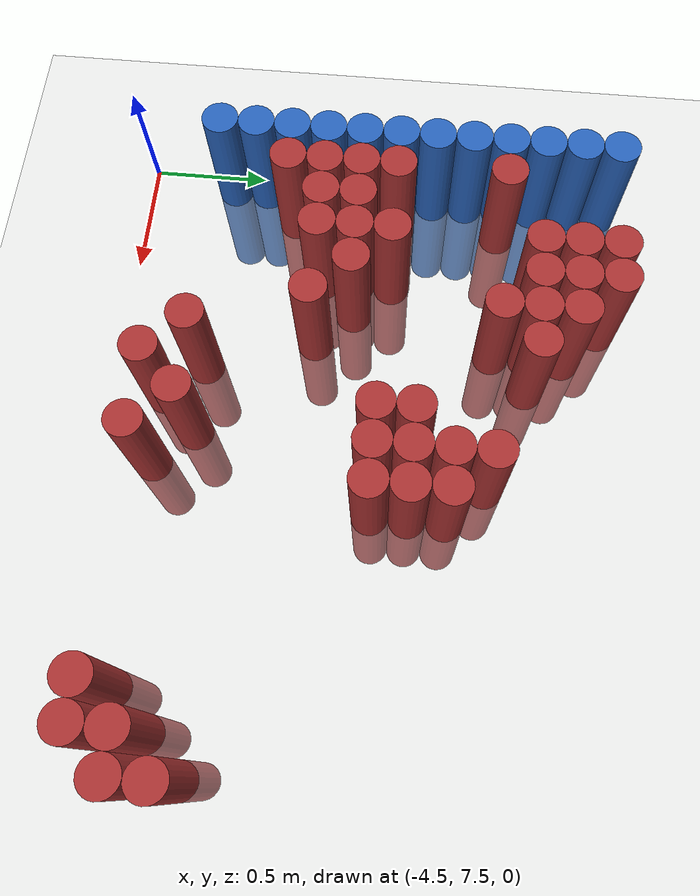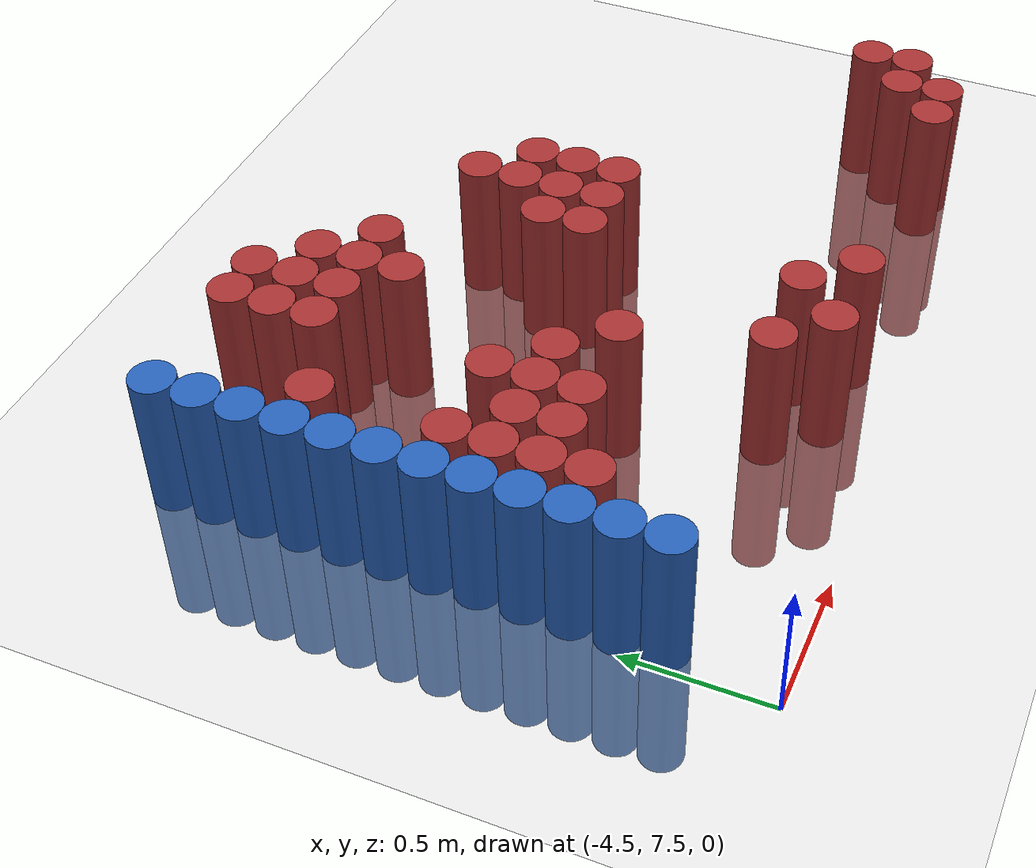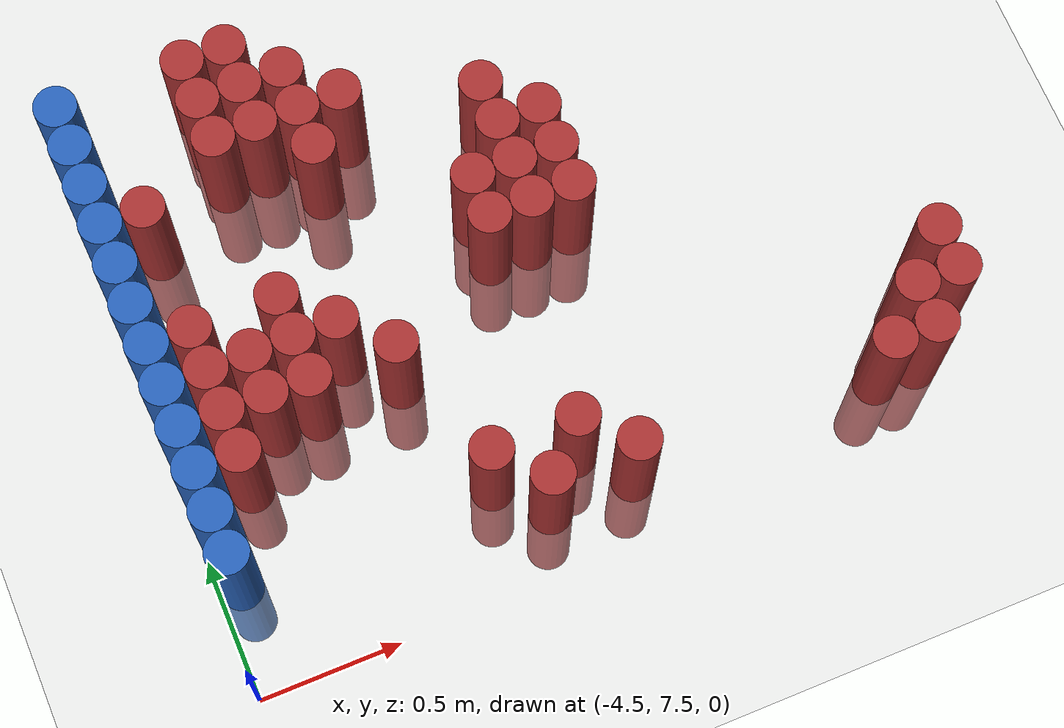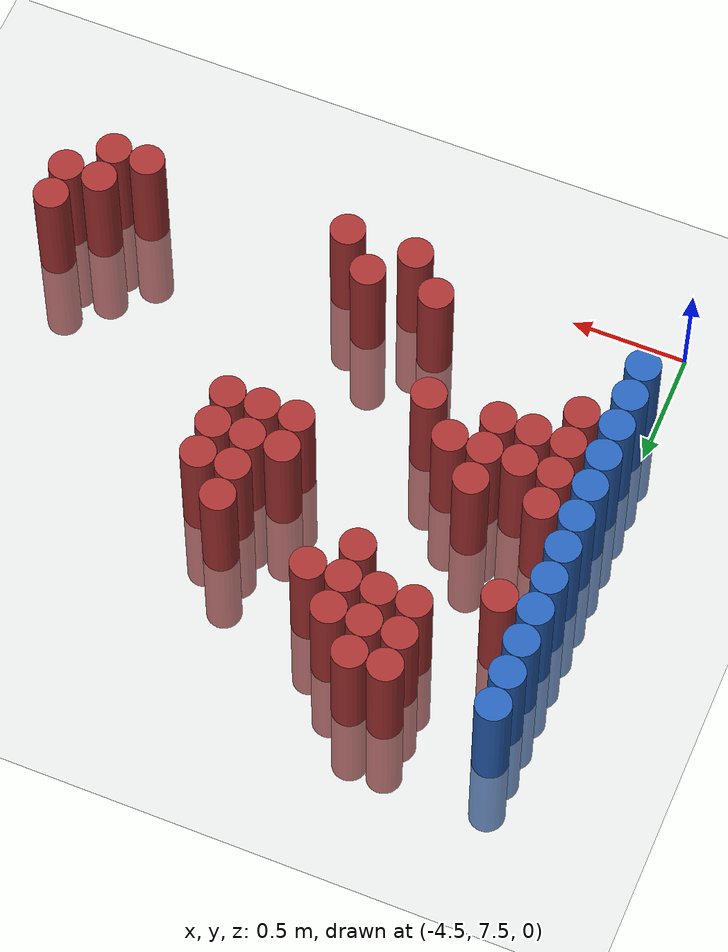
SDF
<sdf version="1.6">
 <world name="default">
  <model name="ground_plane">
   <static>1</static>
   <link name="link">
    <collision name="collision">
     <geometry><plane><normal>0 0 1</normal><size>100 100</size></plane></geometry>
     <surface><friction><ode><mu>100</mu><mu2>50</mu2></ode></friction></surface>
    </collision>
    <visual name="visual">
     <cast_shadows>0</cast_shadows>
     <geometry><plane><normal>0 0 1</normal><size>100 100</size></plane></geometry>
     <material>
      <script><uri>file://media/materials/scripts/gazebo.material</uri><name>Gazebo/Grey</name></script>
     </material>
    </visual>
   </link>
  </model>
  <model name="unit_cylinder_114">
   <static>1</static>
   <pose>-4.425000 7.875000 0.000000 0.000000 0.000000 0.000000</pose>
   <link name="link">
    <inertial>
     <mass>1</mass>
     <inertia><ixx>0.145833</ixx><ixy>0</ixy><ixz>0</ixz><iyy>0.145833</iyy><iyz>0</iyz><izz>0.125</izz></inertia>
    </inertial>
    <collision name="collision">
     <geometry><cylinder><radius>0.075000</radius><length>1</length></cylinder></geometry>
    </collision>
    <visual name="visual">
     <geometry><cylinder><radius>0.075000</radius><length>1</length></cylinder></geometry>
     <material>
      <ambient>0.152000 0.379000 0.720000 1</ambient>
      <diffuse>0.152000 0.379000 0.720000 1</diffuse>
     </material>
     <material>
      <script><name>Gazebo/Grey</name><uri>file://media/materials/scripts/gazebo.material</uri></script>
     </material>
    </visual>
   </link>
  </model>
  <model name="unit_cylinder_115">
   <static>1</static>
   <pose>-4.425000 8.025000 0.000000 0.000000 0.000000 0.000000</pose>
   <link name="link">
    <inertial>
     <mass>1</mass>
     <inertia><ixx>0.145833</ixx><ixy>0</ixy><ixz>0</ixz><iyy>0.145833</iyy><iyz>0</iyz><izz>0.125</izz></inertia>
    </inertial>
    <collision name="collision">
     <geometry><cylinder><radius>0.075000</radius><length>1</length></cylinder></geometry>
    </collision>
    <visual name="visual">
     <geometry><cylinder><radius>0.075000</radius><length>1</length></cylinder></geometry>
     <material>
      <ambient>0.152000 0.379000 0.720000 1</ambient>
      <diffuse>0.152000 0.379000 0.720000 1</diffuse>
     </material>
     <material>
      <script><name>Gazebo/Grey</name><uri>file://media/materials/scripts/gazebo.material</uri></script>
     </material>
    </visual>
   </link>
  </model>
  <model name="unit_cylinder_116">
   <static>1</static>
   <pose>-4.425000 8.175000 0.000000 0.000000 0.000000 0.000000</pose>
   <link name="link">
    <inertial>
     <mass>1</mass>
     <inertia><ixx>0.145833</ixx><ixy>0</ixy><ixz>0</ixz><iyy>0.145833</iyy><iyz>0</iyz><izz>0.125</izz></inertia>
    </inertial>
    <collision name="collision">
     <geometry><cylinder><radius>0.075000</radius><length>1</length></cylinder></geometry>
    </collision>
    <visual name="visual">
     <geometry><cylinder><radius>0.075000</radius><length>1</length></cylinder></geometry>
     <material>
      <ambient>0.152000 0.379000 0.720000 1</ambient>
      <diffuse>0.152000 0.379000 0.720000 1</diffuse>
     </material>
     <material>
      <script><name>Gazebo/Grey</name><uri>file://media/materials/scripts/gazebo.material</uri></script>
     </material>
    </visual>
   </link>
  </model>
  <model name="unit_cylinder_117">
   <static>1</static>
   <pose>-4.425000 8.325000 0.000000 0.000000 0.000000 0.000000</pose>
   <link name="link">
    <inertial>
     <mass>1</mass>
     <inertia><ixx>0.145833</ixx><ixy>0</ixy><ixz>0</ixz><iyy>0.145833</iyy><iyz>0</iyz><izz>0.125</izz></inertia>
    </inertial>
    <collision name="collision">
     <geometry><cylinder><radius>0.075000</radius><length>1</length></cylinder></geometry>
    </collision>
    <visual name="visual">
     <geometry><cylinder><radius>0.075000</radius><length>1</length></cylinder></geometry>
     <material>
      <ambient>0.152000 0.379000 0.720000 1</ambient>
      <diffuse>0.152000 0.379000 0.720000 1</diffuse>
     </material>
     <material>
      <script><name>Gazebo/Grey</name><uri>file://media/materials/scripts/gazebo.material</uri></script>
     </material>
    </visual>
   </link>
  </model>
  <model name="unit_cylinder_118">
   <static>1</static>
   <pose>-4.425000 8.475000 0.000000 0.000000 0.000000 0.000000</pose>
   <link name="link">
    <inertial>
     <mass>1</mass>
     <inertia><ixx>0.145833</ixx><ixy>0</ixy><ixz>0</ixz><iyy>0.145833</iyy><iyz>0</iyz><izz>0.125</izz></inertia>
    </inertial>
    <collision name="collision">
     <geometry><cylinder><radius>0.075000</radius><length>1</length></cylinder></geometry>
    </collision>
    <visual name="visual">
     <geometry><cylinder><radius>0.075000</radius><length>1</length></cylinder></geometry>
     <material>
      <ambient>0.152000 0.379000 0.720000 1</ambient>
      <diffuse>0.152000 0.379000 0.720000 1</diffuse>
     </material>
     <material>
      <script><name>Gazebo/Grey</name><uri>file://media/materials/scripts/gazebo.material</uri></script>
     </material>
    </visual>
   </link>
  </model>
  <model name="unit_cylinder_119">
   <static>1</static>
   <pose>-4.425000 8.625000 0.000000 0.000000 0.000000 0.000000</pose>
   <link name="link">
    <inertial>
     <mass>1</mass>
     <inertia><ixx>0.145833</ixx><ixy>0</ixy><ixz>0</ixz><iyy>0.145833</iyy><iyz>0</iyz><izz>0.125</izz></inertia>
    </inertial>
    <collision name="collision">
     <geometry><cylinder><radius>0.075000</radius><length>1</length></cylinder></geometry>
    </collision>
    <visual name="visual">
     <geometry><cylinder><radius>0.075000</radius><length>1</length></cylinder></geometry>
     <material>
      <ambient>0.152000 0.379000 0.720000 1</ambient>
      <diffuse>0.152000 0.379000 0.720000 1</diffuse>
     </material>
     <material>
      <script><name>Gazebo/Grey</name><uri>file://media/materials/scripts/gazebo.material</uri></script>
     </material>
    </visual>
   </link>
  </model>
  <model name="unit_cylinder_120">
   <static>1</static>
   <pose>-4.425000 8.775000 0.000000 0.000000 0.000000 0.000000</pose>
   <link name="link">
    <inertial>
     <mass>1</mass>
     <inertia><ixx>0.145833</ixx><ixy>0</ixy><ixz>0</ixz><iyy>0.145833</iyy><iyz>0</iyz><izz>0.125</izz></inertia>
    </inertial>
    <collision name="collision">
     <geometry><cylinder><radius>0.075000</radius><length>1</length></cylinder></geometry>
    </collision>
    <visual name="visual">
     <geometry><cylinder><radius>0.075000</radius><length>1</length></cylinder></geometry>
     <material>
      <ambient>0.152000 0.379000 0.720000 1</ambient>
      <diffuse>0.152000 0.379000 0.720000 1</diffuse>
     </material>
     <material>
      <script><name>Gazebo/Grey</name><uri>file://media/materials/scripts/gazebo.material</uri></script>
     </material>
    </visual>
   </link>
  </model>
  <model name="unit_cylinder_121">
   <static>1</static>
   <pose>-4.425000 8.925000 0.000000 0.000000 0.000000 0.000000</pose>
   <link name="link">
    <inertial>
     <mass>1</mass>
     <inertia><ixx>0.145833</ixx><ixy>0</ixy><ixz>0</ixz><iyy>0.145833</iyy><iyz>0</iyz><izz>0.125</izz></inertia>
    </inertial>
    <collision name="collision">
     <geometry><cylinder><radius>0.075000</radius><length>1</length></cylinder></geometry>
    </collision>
    <visual name="visual">
     <geometry><cylinder><radius>0.075000</radius><length>1</length></cylinder></geometry>
     <material>
      <ambient>0.152000 0.379000 0.720000 1</ambient>
      <diffuse>0.152000 0.379000 0.720000 1</diffuse>
     </material>
     <material>
      <script><name>Gazebo/Grey</name><uri>file://media/materials/scripts/gazebo.material</uri></script>
     </material>
    </visual>
   </link>
  </model>
  <model name="unit_cylinder_122">
   <static>1</static>
   <pose>-4.425000 9.075000 0.000000 0.000000 0.000000 0.000000</pose>
   <link name="link">
    <inertial>
     <mass>1</mass>
     <inertia><ixx>0.145833</ixx><ixy>0</ixy><ixz>0</ixz><iyy>0.145833</iyy><iyz>0</iyz><izz>0.125</izz></inertia>
    </inertial>
    <collision name="collision">
     <geometry><cylinder><radius>0.075000</radius><length>1</length></cylinder></geometry>
    </collision>
    <visual name="visual">
     <geometry><cylinder><radius>0.075000</radius><length>1</length></cylinder></geometry>
     <material>
      <ambient>0.152000 0.379000 0.720000 1</ambient>
      <diffuse>0.152000 0.379000 0.720000 1</diffuse>
     </material>
     <material>
      <script><name>Gazebo/Grey</name><uri>file://media/materials/scripts/gazebo.material</uri></script>
     </material>
    </visual>
   </link>
  </model>
  <model name="unit_cylinder_123">
   <static>1</static>
   <pose>-4.425000 9.225000 0.000000 0.000000 0.000000 0.000000</pose>
   <link name="link">
    <inertial>
     <mass>1</mass>
     <inertia><ixx>0.145833</ixx><ixy>0</ixy><ixz>0</ixz><iyy>0.145833</iyy><iyz>0</iyz><izz>0.125</izz></inertia>
    </inertial>
    <collision name="collision">
     <geometry><cylinder><radius>0.075000</radius><length>1</length></cylinder></geometry>
    </collision>
    <visual name="visual">
     <geometry><cylinder><radius>0.075000</radius><length>1</length></cylinder></geometry>
     <material>
      <ambient>0.152000 0.379000 0.720000 1</ambient>
      <diffuse>0.152000 0.379000 0.720000 1</diffuse>
     </material>
     <material>
      <script><name>Gazebo/Grey</name><uri>file://media/materials/scripts/gazebo.material</uri></script>
     </material>
    </visual>
   </link>
  </model>
  <model name="unit_cylinder_124">
   <static>1</static>
   <pose>-4.425000 9.375000 0.000000 0.000000 0.000000 0.000000</pose>
   <link name="link">
    <inertial>
     <mass>1</mass>
     <inertia><ixx>0.145833</ixx><ixy>0</ixy><ixz>0</ixz><iyy>0.145833</iyy><iyz>0</iyz><izz>0.125</izz></inertia>
    </inertial>
    <collision name="collision">
     <geometry><cylinder><radius>0.075000</radius><length>1</length></cylinder></geometry>
    </collision>
    <visual name="visual">
     <geometry><cylinder><radius>0.075000</radius><length>1</length></cylinder></geometry>
     <material>
      <ambient>0.152000 0.379000 0.720000 1</ambient>
      <diffuse>0.152000 0.379000 0.720000 1</diffuse>
     </material>
     <material>
      <script><name>Gazebo/Grey</name><uri>file://media/materials/scripts/gazebo.material</uri></script>
     </material>
    </visual>
   </link>
  </model>
  <model name="unit_cylinder_125">
   <static>1</static>
   <pose>-4.425000 9.525000 0.000000 0.000000 0.000000 0.000000</pose>
   <link name="link">
    <inertial>
     <mass>1</mass>
     <inertia><ixx>0.145833</ixx><ixy>0</ixy><ixz>0</ixz><iyy>0.145833</iyy><iyz>0</iyz><izz>0.125</izz></inertia>
    </inertial>
    <collision name="collision">
     <geometry><cylinder><radius>0.075000</radius><length>1</length></cylinder></geometry>
    </collision>
    <visual name="visual">
     <geometry><cylinder><radius>0.075000</radius><length>1</length></cylinder></geometry>
     <material>
      <ambient>0.152000 0.379000 0.720000 1</ambient>
      <diffuse>0.152000 0.379000 0.720000 1</diffuse>
     </material>
     <material>
      <script><name>Gazebo/Grey</name><uri>file://media/materials/scripts/gazebo.material</uri></script>
     </material>
    </visual>
   </link>
  </model>
  <model name="unit_cylinder_139">
   <static>1</static>
   <pose>-4.275000 8.175000 0.000000 0.000000 0.000000 0.000000</pose>
   <link name="link">
    <inertial>
     <mass>1</mass>
     <inertia><ixx>0.145833</ixx><ixy>0</ixy><ixz>0</ixz><iyy>0.145833</iyy><iyz>0</iyz><izz>0.125</izz></inertia>
    </inertial>
    <collision name="collision">
     <geometry><cylinder><radius>0.075000</radius><length>1</length></cylinder></geometry>
    </collision>
    <visual name="visual">
     <geometry><cylinder><radius>0.075000</radius><length>1</length></cylinder></geometry>
     <material>
      <ambient>0.648000 0.192000 0.192000 1</ambient>
      <diffuse>0.648000 0.192000 0.192000 1</diffuse>
     </material>
     <material>
      <script><name>Gazebo/Grey</name><uri>file://media/materials/scripts/gazebo.material</uri></script>
     </material>
    </visual>
   </link>
  </model>
  <model name="unit_cylinder_140">
   <static>1</static>
   <pose>-4.275000 8.325000 0.000000 0.000000 0.000000 0.000000</pose>
   <link name="link">
    <inertial>
     <mass>1</mass>
     <inertia><ixx>0.145833</ixx><ixy>0</ixy><ixz>0</ixz><iyy>0.145833</iyy><iyz>0</iyz><izz>0.125</izz></inertia>
    </inertial>
    <collision name="collision">
     <geometry><cylinder><radius>0.075000</radius><length>1</length></cylinder></geometry>
    </collision>
    <visual name="visual">
     <geometry><cylinder><radius>0.075000</radius><length>1</length></cylinder></geometry>
     <material>
      <ambient>0.648000 0.192000 0.192000 1</ambient>
      <diffuse>0.648000 0.192000 0.192000 1</diffuse>
     </material>
     <material>
      <script><name>Gazebo/Grey</name><uri>file://media/materials/scripts/gazebo.material</uri></script>
     </material>
    </visual>
   </link>
  </model>
  <model name="unit_cylinder_141">
   <static>1</static>
   <pose>-4.275000 8.475000 0.000000 0.000000 0.000000 0.000000</pose>
   <link name="link">
    <inertial>
     <mass>1</mass>
     <inertia><ixx>0.145833</ixx><ixy>0</ixy><ixz>0</ixz><iyy>0.145833</iyy><iyz>0</iyz><izz>0.125</izz></inertia>
    </inertial>
    <collision name="collision">
     <geometry><cylinder><radius>0.075000</radius><length>1</length></cylinder></geometry>
    </collision>
    <visual name="visual">
     <geometry><cylinder><radius>0.075000</radius><length>1</length></cylinder></geometry>
     <material>
      <ambient>0.648000 0.192000 0.192000 1</ambient>
      <diffuse>0.648000 0.192000 0.192000 1</diffuse>
     </material>
     <material>
      <script><name>Gazebo/Grey</name><uri>file://media/materials/scripts/gazebo.material</uri></script>
     </material>
    </visual>
   </link>
  </model>
  <model name="unit_cylinder_142">
   <static>1</static>
   <pose>-4.275000 8.625000 0.000000 0.000000 0.000000 0.000000</pose>
   <link name="link">
    <inertial>
     <mass>1</mass>
     <inertia><ixx>0.145833</ixx><ixy>0</ixy><ixz>0</ixz><iyy>0.145833</iyy><iyz>0</iyz><izz>0.125</izz></inertia>
    </inertial>
    <collision name="collision">
     <geometry><cylinder><radius>0.075000</radius><length>1</length></cylinder></geometry>
    </collision>
    <visual name="visual">
     <geometry><cylinder><radius>0.075000</radius><length>1</length></cylinder></geometry>
     <material>
      <ambient>0.648000 0.192000 0.192000 1</ambient>
      <diffuse>0.648000 0.192000 0.192000 1</diffuse>
     </material>
     <material>
      <script><name>Gazebo/Grey</name><uri>file://media/materials/scripts/gazebo.material</uri></script>
     </material>
    </visual>
   </link>
  </model>
  <model name="unit_cylinder_143">
   <static>1</static>
   <pose>-4.275000 9.075000 0.000000 0.000000 0.000000 0.000000</pose>
   <link name="link">
    <inertial>
     <mass>1</mass>
     <inertia><ixx>0.145833</ixx><ixy>0</ixy><ixz>0</ixz><iyy>0.145833</iyy><iyz>0</iyz><izz>0.125</izz></inertia>
    </inertial>
    <collision name="collision">
     <geometry><cylinder><radius>0.075000</radius><length>1</length></cylinder></geometry>
    </collision>
    <visual name="visual">
     <geometry><cylinder><radius>0.075000</radius><length>1</length></cylinder></geometry>
     <material>
      <ambient>0.648000 0.192000 0.192000 1</ambient>
      <diffuse>0.648000 0.192000 0.192000 1</diffuse>
     </material>
     <material>
      <script><name>Gazebo/Grey</name><uri>file://media/materials/scripts/gazebo.material</uri></script>
     </material>
    </visual>
   </link>
  </model>
  <model name="unit_cylinder_152">
   <static>1</static>
   <pose>-4.125000 8.325000 0.000000 0.000000 0.000000 0.000000</pose>
   <link name="link">
    <inertial>
     <mass>1</mass>
     <inertia><ixx>0.145833</ixx><ixy>0</ixy><ixz>0</ixz><iyy>0.145833</iyy><iyz>0</iyz><izz>0.125</izz></inertia>
    </inertial>
    <collision name="collision">
     <geometry><cylinder><radius>0.075000</radius><length>1</length></cylinder></geometry>
    </collision>
    <visual name="visual">
     <geometry><cylinder><radius>0.075000</radius><length>1</length></cylinder></geometry>
     <material>
      <ambient>0.648000 0.192000 0.192000 1</ambient>
      <diffuse>0.648000 0.192000 0.192000 1</diffuse>
     </material>
     <material>
      <script><name>Gazebo/Grey</name><uri>file://media/materials/scripts/gazebo.material</uri></script>
     </material>
    </visual>
   </link>
  </model>
  <model name="unit_cylinder_153">
   <static>1</static>
   <pose>-4.125000 8.475000 0.000000 0.000000 0.000000 0.000000</pose>
   <link name="link">
    <inertial>
     <mass>1</mass>
     <inertia><ixx>0.145833</ixx><ixy>0</ixy><ixz>0</ixz><iyy>0.145833</iyy><iyz>0</iyz><izz>0.125</izz></inertia>
    </inertial>
    <collision name="collision">
     <geometry><cylinder><radius>0.075000</radius><length>1</length></cylinder></geometry>
    </collision>
    <visual name="visual">
     <geometry><cylinder><radius>0.075000</radius><length>1</length></cylinder></geometry>
     <material>
      <ambient>0.648000 0.192000 0.192000 1</ambient>
      <diffuse>0.648000 0.192000 0.192000 1</diffuse>
     </material>
     <material>
      <script><name>Gazebo/Grey</name><uri>file://media/materials/scripts/gazebo.material</uri></script>
     </material>
    </visual>
   </link>
  </model>
  <model name="unit_cylinder_158">
   <static>1</static>
   <pose>-3.975000 8.325000 0.000000 0.000000 0.000000 0.000000</pose>
   <link name="link">
    <inertial>
     <mass>1</mass>
     <inertia><ixx>0.145833</ixx><ixy>0</ixy><ixz>0</ixz><iyy>0.145833</iyy><iyz>0</iyz><izz>0.125</izz></inertia>
    </inertial>
    <collision name="collision">
     <geometry><cylinder><radius>0.075000</radius><length>1</length></cylinder></geometry>
    </collision>
    <visual name="visual">
     <geometry><cylinder><radius>0.075000</radius><length>1</length></cylinder></geometry>
     <material>
      <ambient>0.648000 0.192000 0.192000 1</ambient>
      <diffuse>0.648000 0.192000 0.192000 1</diffuse>
     </material>
     <material>
      <script><name>Gazebo/Grey</name><uri>file://media/materials/scripts/gazebo.material</uri></script>
     </material>
    </visual>
   </link>
  </model>
  <model name="unit_cylinder_159">
   <static>1</static>
   <pose>-3.975000 8.475000 0.000000 0.000000 0.000000 0.000000</pose>
   <link name="link">
    <inertial>
     <mass>1</mass>
     <inertia><ixx>0.145833</ixx><ixy>0</ixy><ixz>0</ixz><iyy>0.145833</iyy><iyz>0</iyz><izz>0.125</izz></inertia>
    </inertial>
    <collision name="collision">
     <geometry><cylinder><radius>0.075000</radius><length>1</length></cylinder></geometry>
    </collision>
    <visual name="visual">
     <geometry><cylinder><radius>0.075000</radius><length>1</length></cylinder></geometry>
     <material>
      <ambient>0.648000 0.192000 0.192000 1</ambient>
      <diffuse>0.648000 0.192000 0.192000 1</diffuse>
     </material>
     <material>
      <script><name>Gazebo/Grey</name><uri>file://media/materials/scripts/gazebo.material</uri></script>
     </material>
    </visual>
   </link>
  </model>
  <model name="unit_cylinder_160">
   <static>1</static>
   <pose>-3.975000 8.625000 0.000000 0.000000 0.000000 0.000000</pose>
   <link name="link">
    <inertial>
     <mass>1</mass>
     <inertia><ixx>0.145833</ixx><ixy>0</ixy><ixz>0</ixz><iyy>0.145833</iyy><iyz>0</iyz><izz>0.125</izz></inertia>
    </inertial>
    <collision name="collision">
     <geometry><cylinder><radius>0.075000</radius><length>1</length></cylinder></geometry>
    </collision>
    <visual name="visual">
     <geometry><cylinder><radius>0.075000</radius><length>1</length></cylinder></geometry>
     <material>
      <ambient>0.648000 0.192000 0.192000 1</ambient>
      <diffuse>0.648000 0.192000 0.192000 1</diffuse>
     </material>
     <material>
      <script><name>Gazebo/Grey</name><uri>file://media/materials/scripts/gazebo.material</uri></script>
     </material>
    </visual>
   </link>
  </model>
  <model name="unit_cylinder_161">
   <static>1</static>
   <pose>-3.975000 9.225000 0.000000 0.000000 0.000000 0.000000</pose>
   <link name="link">
    <inertial>
     <mass>1</mass>
     <inertia><ixx>0.145833</ixx><ixy>0</ixy><ixz>0</ixz><iyy>0.145833</iyy><iyz>0</iyz><izz>0.125</izz></inertia>
    </inertial>
    <collision name="collision">
     <geometry><cylinder><radius>0.075000</radius><length>1</length></cylinder></geometry>
    </collision>
    <visual name="visual">
     <geometry><cylinder><radius>0.075000</radius><length>1</length></cylinder></geometry>
     <material>
      <ambient>0.648000 0.192000 0.192000 1</ambient>
      <diffuse>0.648000 0.192000 0.192000 1</diffuse>
     </material>
     <material>
      <script><name>Gazebo/Grey</name><uri>file://media/materials/scripts/gazebo.material</uri></script>
     </material>
    </visual>
   </link>
  </model>
  <model name="unit_cylinder_162">
   <static>1</static>
   <pose>-3.975000 9.375000 0.000000 0.000000 0.000000 0.000000</pose>
   <link name="link">
    <inertial>
     <mass>1</mass>
     <inertia><ixx>0.145833</ixx><ixy>0</ixy><ixz>0</ixz><iyy>0.145833</iyy><iyz>0</iyz><izz>0.125</izz></inertia>
    </inertial>
    <collision name="collision">
     <geometry><cylinder><radius>0.075000</radius><length>1</length></cylinder></geometry>
    </collision>
    <visual name="visual">
     <geometry><cylinder><radius>0.075000</radius><length>1</length></cylinder></geometry>
     <material>
      <ambient>0.648000 0.192000 0.192000 1</ambient>
      <diffuse>0.648000 0.192000 0.192000 1</diffuse>
     </material>
     <material>
      <script><name>Gazebo/Grey</name><uri>file://media/materials/scripts/gazebo.material</uri></script>
     </material>
    </visual>
   </link>
  </model>
  <model name="unit_cylinder_163">
   <static>1</static>
   <pose>-3.975000 9.525000 0.000000 0.000000 0.000000 0.000000</pose>
   <link name="link">
    <inertial>
     <mass>1</mass>
     <inertia><ixx>0.145833</ixx><ixy>0</ixy><ixz>0</ixz><iyy>0.145833</iyy><iyz>0</iyz><izz>0.125</izz></inertia>
    </inertial>
    <collision name="collision">
     <geometry><cylinder><radius>0.075000</radius><length>1</length></cylinder></geometry>
    </collision>
    <visual name="visual">
     <geometry><cylinder><radius>0.075000</radius><length>1</length></cylinder></geometry>
     <material>
      <ambient>0.648000 0.192000 0.192000 1</ambient>
      <diffuse>0.648000 0.192000 0.192000 1</diffuse>
     </material>
     <material>
      <script><name>Gazebo/Grey</name><uri>file://media/materials/scripts/gazebo.material</uri></script>
     </material>
    </visual>
   </link>
  </model>
  <model name="unit_cylinder_167">
   <static>1</static>
   <pose>-3.825000 8.475000 0.000000 0.000000 0.000000 0.000000</pose>
   <link name="link">
    <inertial>
     <mass>1</mass>
     <inertia><ixx>0.145833</ixx><ixy>0</ixy><ixz>0</ixz><iyy>0.145833</iyy><iyz>0</iyz><izz>0.125</izz></inertia>
    </inertial>
    <collision name="collision">
     <geometry><cylinder><radius>0.075000</radius><length>1</length></cylinder></geometry>
    </collision>
    <visual name="visual">
     <geometry><cylinder><radius>0.075000</radius><length>1</length></cylinder></geometry>
     <material>
      <ambient>0.648000 0.192000 0.192000 1</ambient>
      <diffuse>0.648000 0.192000 0.192000 1</diffuse>
     </material>
     <material>
      <script><name>Gazebo/Grey</name><uri>file://media/materials/scripts/gazebo.material</uri></script>
     </material>
    </visual>
   </link>
  </model>
  <model name="unit_cylinder_168">
   <static>1</static>
   <pose>-3.825000 9.225000 0.000000 0.000000 0.000000 0.000000</pose>
   <link name="link">
    <inertial>
     <mass>1</mass>
     <inertia><ixx>0.145833</ixx><ixy>0</ixy><ixz>0</ixz><iyy>0.145833</iyy><iyz>0</iyz><izz>0.125</izz></inertia>
    </inertial>
    <collision name="collision">
     <geometry><cylinder><radius>0.075000</radius><length>1</length></cylinder></geometry>
    </collision>
    <visual name="visual">
     <geometry><cylinder><radius>0.075000</radius><length>1</length></cylinder></geometry>
     <material>
      <ambient>0.648000 0.192000 0.192000 1</ambient>
      <diffuse>0.648000 0.192000 0.192000 1</diffuse>
     </material>
     <material>
      <script><name>Gazebo/Grey</name><uri>file://media/materials/scripts/gazebo.material</uri></script>
     </material>
    </visual>
   </link>
  </model>
  <model name="unit_cylinder_169">
   <static>1</static>
   <pose>-3.825000 9.375000 0.000000 0.000000 0.000000 0.000000</pose>
   <link name="link">
    <inertial>
     <mass>1</mass>
     <inertia><ixx>0.145833</ixx><ixy>0</ixy><ixz>0</ixz><iyy>0.145833</iyy><iyz>0</iyz><izz>0.125</izz></inertia>
    </inertial>
    <collision name="collision">
     <geometry><cylinder><radius>0.075000</radius><length>1</length></cylinder></geometry>
    </collision>
    <visual name="visual">
     <geometry><cylinder><radius>0.075000</radius><length>1</length></cylinder></geometry>
     <material>
      <ambient>0.648000 0.192000 0.192000 1</ambient>
      <diffuse>0.648000 0.192000 0.192000 1</diffuse>
     </material>
     <material>
      <script><name>Gazebo/Grey</name><uri>file://media/materials/scripts/gazebo.material</uri></script>
     </material>
    </visual>
   </link>
  </model>
  <model name="unit_cylinder_170">
   <static>1</static>
   <pose>-3.825000 9.525000 0.000000 0.000000 0.000000 0.000000</pose>
   <link name="link">
    <inertial>
     <mass>1</mass>
     <inertia><ixx>0.145833</ixx><ixy>0</ixy><ixz>0</ixz><iyy>0.145833</iyy><iyz>0</iyz><izz>0.125</izz></inertia>
    </inertial>
    <collision name="collision">
     <geometry><cylinder><radius>0.075000</radius><length>1</length></cylinder></geometry>
    </collision>
    <visual name="visual">
     <geometry><cylinder><radius>0.075000</radius><length>1</length></cylinder></geometry>
     <material>
      <ambient>0.648000 0.192000 0.192000 1</ambient>
      <diffuse>0.648000 0.192000 0.192000 1</diffuse>
     </material>
     <material>
      <script><name>Gazebo/Grey</name><uri>file://media/materials/scripts/gazebo.material</uri></script>
     </material>
    </visual>
   </link>
  </model>
  <model name="unit_cylinder_173">
   <static>1</static>
   <pose>-3.675000 8.325000 0.000000 0.000000 0.000000 0.000000</pose>
   <link name="link">
    <inertial>
     <mass>1</mass>
     <inertia><ixx>0.145833</ixx><ixy>0</ixy><ixz>0</ixz><iyy>0.145833</iyy><iyz>0</iyz><izz>0.125</izz></inertia>
    </inertial>
    <collision name="collision">
     <geometry><cylinder><radius>0.075000</radius><length>1</length></cylinder></geometry>
    </collision>
    <visual name="visual">
     <geometry><cylinder><radius>0.075000</radius><length>1</length></cylinder></geometry>
     <material>
      <ambient>0.648000 0.192000 0.192000 1</ambient>
      <diffuse>0.648000 0.192000 0.192000 1</diffuse>
     </material>
     <material>
      <script><name>Gazebo/Grey</name><uri>file://media/materials/scripts/gazebo.material</uri></script>
     </material>
    </visual>
   </link>
  </model>
  <model name="unit_cylinder_174">
   <static>1</static>
   <pose>-3.675000 9.075000 0.000000 0.000000 0.000000 0.000000</pose>
   <link name="link">
    <inertial>
     <mass>1</mass>
     <inertia><ixx>0.145833</ixx><ixy>0</ixy><ixz>0</ixz><iyy>0.145833</iyy><iyz>0</iyz><izz>0.125</izz></inertia>
    </inertial>
    <collision name="collision">
     <geometry><cylinder><radius>0.075000</radius><length>1</length></cylinder></geometry>
    </collision>
    <visual name="visual">
     <geometry><cylinder><radius>0.075000</radius><length>1</length></cylinder></geometry>
     <material>
      <ambient>0.648000 0.192000 0.192000 1</ambient>
      <diffuse>0.648000 0.192000 0.192000 1</diffuse>
     </material>
     <material>
      <script><name>Gazebo/Grey</name><uri>file://media/materials/scripts/gazebo.material</uri></script>
     </material>
    </visual>
   </link>
  </model>
  <model name="unit_cylinder_175">
   <static>1</static>
   <pose>-3.675000 9.225000 0.000000 0.000000 0.000000 0.000000</pose>
   <link name="link">
    <inertial>
     <mass>1</mass>
     <inertia><ixx>0.145833</ixx><ixy>0</ixy><ixz>0</ixz><iyy>0.145833</iyy><iyz>0</iyz><izz>0.125</izz></inertia>
    </inertial>
    <collision name="collision">
     <geometry><cylinder><radius>0.075000</radius><length>1</length></cylinder></geometry>
    </collision>
    <visual name="visual">
     <geometry><cylinder><radius>0.075000</radius><length>1</length></cylinder></geometry>
     <material>
      <ambient>0.648000 0.192000 0.192000 1</ambient>
      <diffuse>0.648000 0.192000 0.192000 1</diffuse>
     </material>
     <material>
      <script><name>Gazebo/Grey</name><uri>file://media/materials/scripts/gazebo.material</uri></script>
     </material>
    </visual>
   </link>
  </model>
  <model name="unit_cylinder_176">
   <static>1</static>
   <pose>-3.675000 9.375000 0.000000 0.000000 0.000000 0.000000</pose>
   <link name="link">
    <inertial>
     <mass>1</mass>
     <inertia><ixx>0.145833</ixx><ixy>0</ixy><ixz>0</ixz><iyy>0.145833</iyy><iyz>0</iyz><izz>0.125</izz></inertia>
    </inertial>
    <collision name="collision">
     <geometry><cylinder><radius>0.075000</radius><length>1</length></cylinder></geometry>
    </collision>
    <visual name="visual">
     <geometry><cylinder><radius>0.075000</radius><length>1</length></cylinder></geometry>
     <material>
      <ambient>0.648000 0.192000 0.192000 1</ambient>
      <diffuse>0.648000 0.192000 0.192000 1</diffuse>
     </material>
     <material>
      <script><name>Gazebo/Grey</name><uri>file://media/materials/scripts/gazebo.material</uri></script>
     </material>
    </visual>
   </link>
  </model>
  <model name="unit_cylinder_179">
   <static>1</static>
   <pose>-3.525000 7.875000 0.000000 0.000000 0.000000 0.000000</pose>
   <link name="link">
    <inertial>
     <mass>1</mass>
     <inertia><ixx>0.145833</ixx><ixy>0</ixy><ixz>0</ixz><iyy>0.145833</iyy><iyz>0</iyz><izz>0.125</izz></inertia>
    </inertial>
    <collision name="collision">
     <geometry><cylinder><radius>0.075000</radius><length>1</length></cylinder></geometry>
    </collision>
    <visual name="visual">
     <geometry><cylinder><radius>0.075000</radius><length>1</length></cylinder></geometry>
     <material>
      <ambient>0.648000 0.192000 0.192000 1</ambient>
      <diffuse>0.648000 0.192000 0.192000 1</diffuse>
     </material>
     <material>
      <script><name>Gazebo/Grey</name><uri>file://media/materials/scripts/gazebo.material</uri></script>
     </material>
    </visual>
   </link>
  </model>
  <model name="unit_cylinder_180">
   <static>1</static>
   <pose>-3.525000 9.225000 0.000000 0.000000 0.000000 0.000000</pose>
   <link name="link">
    <inertial>
     <mass>1</mass>
     <inertia><ixx>0.145833</ixx><ixy>0</ixy><ixz>0</ixz><iyy>0.145833</iyy><iyz>0</iyz><izz>0.125</izz></inertia>
    </inertial>
    <collision name="collision">
     <geometry><cylinder><radius>0.075000</radius><length>1</length></cylinder></geometry>
    </collision>
    <visual name="visual">
     <geometry><cylinder><radius>0.075000</radius><length>1</length></cylinder></geometry>
     <material>
      <ambient>0.648000 0.192000 0.192000 1</ambient>
      <diffuse>0.648000 0.192000 0.192000 1</diffuse>
     </material>
     <material>
      <script><name>Gazebo/Grey</name><uri>file://media/materials/scripts/gazebo.material</uri></script>
     </material>
    </visual>
   </link>
  </model>
  <model name="unit_cylinder_184">
   <static>1</static>
   <pose>-3.375000 7.725000 0.000000 0.000000 0.000000 0.000000</pose>
   <link name="link">
    <inertial>
     <mass>1</mass>
     <inertia><ixx>0.145833</ixx><ixy>0</ixy><ixz>0</ixz><iyy>0.145833</iyy><iyz>0</iyz><izz>0.125</izz></inertia>
    </inertial>
    <collision name="collision">
     <geometry><cylinder><radius>0.075000</radius><length>1</length></cylinder></geometry>
    </collision>
    <visual name="visual">
     <geometry><cylinder><radius>0.075000</radius><length>1</length></cylinder></geometry>
     <material>
      <ambient>0.648000 0.192000 0.192000 1</ambient>
      <diffuse>0.648000 0.192000 0.192000 1</diffuse>
     </material>
     <material>
      <script><name>Gazebo/Grey</name><uri>file://media/materials/scripts/gazebo.material</uri></script>
     </material>
    </visual>
   </link>
  </model>
  <model name="unit_cylinder_192">
   <static>1</static>
   <pose>-3.225000 7.875000 0.000000 0.000000 0.000000 0.000000</pose>
   <link name="link">
    <inertial>
     <mass>1</mass>
     <inertia><ixx>0.145833</ixx><ixy>0</ixy><ixz>0</ixz><iyy>0.145833</iyy><iyz>0</iyz><izz>0.125</izz></inertia>
    </inertial>
    <collision name="collision">
     <geometry><cylinder><radius>0.075000</radius><length>1</length></cylinder></geometry>
    </collision>
    <visual name="visual">
     <geometry><cylinder><radius>0.075000</radius><length>1</length></cylinder></geometry>
     <material>
      <ambient>0.648000 0.192000 0.192000 1</ambient>
      <diffuse>0.648000 0.192000 0.192000 1</diffuse>
     </material>
     <material>
      <script><name>Gazebo/Grey</name><uri>file://media/materials/scripts/gazebo.material</uri></script>
     </material>
    </visual>
   </link>
  </model>
  <model name="unit_cylinder_193">
   <static>1</static>
   <pose>-3.225000 8.625000 0.000000 0.000000 0.000000 0.000000</pose>
   <link name="link">
    <inertial>
     <mass>1</mass>
     <inertia><ixx>0.145833</ixx><ixy>0</ixy><ixz>0</ixz><iyy>0.145833</iyy><iyz>0</iyz><izz>0.125</izz></inertia>
    </inertial>
    <collision name="collision">
     <geometry><cylinder><radius>0.075000</radius><length>1</length></cylinder></geometry>
    </collision>
    <visual name="visual">
     <geometry><cylinder><radius>0.075000</radius><length>1</length></cylinder></geometry>
     <material>
      <ambient>0.648000 0.192000 0.192000 1</ambient>
      <diffuse>0.648000 0.192000 0.192000 1</diffuse>
     </material>
     <material>
      <script><name>Gazebo/Grey</name><uri>file://media/materials/scripts/gazebo.material</uri></script>
     </material>
    </visual>
   </link>
  </model>
  <model name="unit_cylinder_194">
   <static>1</static>
   <pose>-3.225000 8.775000 0.000000 0.000000 0.000000 0.000000</pose>
   <link name="link">
    <inertial>
     <mass>1</mass>
     <inertia><ixx>0.145833</ixx><ixy>0</ixy><ixz>0</ixz><iyy>0.145833</iyy><iyz>0</iyz><izz>0.125</izz></inertia>
    </inertial>
    <collision name="collision">
     <geometry><cylinder><radius>0.075000</radius><length>1</length></cylinder></geometry>
    </collision>
    <visual name="visual">
     <geometry><cylinder><radius>0.075000</radius><length>1</length></cylinder></geometry>
     <material>
      <ambient>0.648000 0.192000 0.192000 1</ambient>
      <diffuse>0.648000 0.192000 0.192000 1</diffuse>
     </material>
     <material>
      <script><name>Gazebo/Grey</name><uri>file://media/materials/scripts/gazebo.material</uri></script>
     </material>
    </visual>
   </link>
  </model>
  <model name="unit_cylinder_200">
   <static>1</static>
   <pose>-3.075000 7.725000 0.000000 0.000000 0.000000 0.000000</pose>
   <link name="link">
    <inertial>
     <mass>1</mass>
     <inertia><ixx>0.145833</ixx><ixy>0</ixy><ixz>0</ixz><iyy>0.145833</iyy><iyz>0</iyz><izz>0.125</izz></inertia>
    </inertial>
    <collision name="collision">
     <geometry><cylinder><radius>0.075000</radius><length>1</length></cylinder></geometry>
    </collision>
    <visual name="visual">
     <geometry><cylinder><radius>0.075000</radius><length>1</length></cylinder></geometry>
     <material>
      <ambient>0.648000 0.192000 0.192000 1</ambient>
      <diffuse>0.648000 0.192000 0.192000 1</diffuse>
     </material>
     <material>
      <script><name>Gazebo/Grey</name><uri>file://media/materials/scripts/gazebo.material</uri></script>
     </material>
    </visual>
   </link>
  </model>
  <model name="unit_cylinder_201">
   <static>1</static>
   <pose>-3.075000 8.625000 0.000000 0.000000 0.000000 0.000000</pose>
   <link name="link">
    <inertial>
     <mass>1</mass>
     <inertia><ixx>0.145833</ixx><ixy>0</ixy><ixz>0</ixz><iyy>0.145833</iyy><iyz>0</iyz><izz>0.125</izz></inertia>
    </inertial>
    <collision name="collision">
     <geometry><cylinder><radius>0.075000</radius><length>1</length></cylinder></geometry>
    </collision>
    <visual name="visual">
     <geometry><cylinder><radius>0.075000</radius><length>1</length></cylinder></geometry>
     <material>
      <ambient>0.648000 0.192000 0.192000 1</ambient>
      <diffuse>0.648000 0.192000 0.192000 1</diffuse>
     </material>
     <material>
      <script><name>Gazebo/Grey</name><uri>file://media/materials/scripts/gazebo.material</uri></script>
     </material>
    </visual>
   </link>
  </model>
  <model name="unit_cylinder_202">
   <static>1</static>
   <pose>-3.075000 8.775000 0.000000 0.000000 0.000000 0.000000</pose>
   <link name="link">
    <inertial>
     <mass>1</mass>
     <inertia><ixx>0.145833</ixx><ixy>0</ixy><ixz>0</ixz><iyy>0.145833</iyy><iyz>0</iyz><izz>0.125</izz></inertia>
    </inertial>
    <collision name="collision">
     <geometry><cylinder><radius>0.075000</radius><length>1</length></cylinder></geometry>
    </collision>
    <visual name="visual">
     <geometry><cylinder><radius>0.075000</radius><length>1</length></cylinder></geometry>
     <material>
      <ambient>0.648000 0.192000 0.192000 1</ambient>
      <diffuse>0.648000 0.192000 0.192000 1</diffuse>
     </material>
     <material>
      <script><name>Gazebo/Grey</name><uri>file://media/materials/scripts/gazebo.material</uri></script>
     </material>
    </visual>
   </link>
  </model>
  <model name="unit_cylinder_203">
   <static>1</static>
   <pose>-3.075000 8.925000 0.000000 0.000000 0.000000 0.000000</pose>
   <link name="link">
    <inertial>
     <mass>1</mass>
     <inertia><ixx>0.145833</ixx><ixy>0</ixy><ixz>0</ixz><iyy>0.145833</iyy><iyz>0</iyz><izz>0.125</izz></inertia>
    </inertial>
    <collision name="collision">
     <geometry><cylinder><radius>0.075000</radius><length>1</length></cylinder></geometry>
    </collision>
    <visual name="visual">
     <geometry><cylinder><radius>0.075000</radius><length>1</length></cylinder></geometry>
     <material>
      <ambient>0.648000 0.192000 0.192000 1</ambient>
      <diffuse>0.648000 0.192000 0.192000 1</diffuse>
     </material>
     <material>
      <script><name>Gazebo/Grey</name><uri>file://media/materials/scripts/gazebo.material</uri></script>
     </material>
    </visual>
   </link>
  </model>
  <model name="unit_cylinder_204">
   <static>1</static>
   <pose>-3.075000 9.075000 0.000000 0.000000 0.000000 0.000000</pose>
   <link name="link">
    <inertial>
     <mass>1</mass>
     <inertia><ixx>0.145833</ixx><ixy>0</ixy><ixz>0</ixz><iyy>0.145833</iyy><iyz>0</iyz><izz>0.125</izz></inertia>
    </inertial>
    <collision name="collision">
     <geometry><cylinder><radius>0.075000</radius><length>1</length></cylinder></geometry>
    </collision>
    <visual name="visual">
     <geometry><cylinder><radius>0.075000</radius><length>1</length></cylinder></geometry>
     <material>
      <ambient>0.648000 0.192000 0.192000 1</ambient>
      <diffuse>0.648000 0.192000 0.192000 1</diffuse>
     </material>
     <material>
      <script><name>Gazebo/Grey</name><uri>file://media/materials/scripts/gazebo.material</uri></script>
     </material>
    </visual>
   </link>
  </model>
  <model name="unit_cylinder_208">
   <static>1</static>
   <pose>-2.925000 8.625000 0.000000 0.000000 0.000000 0.000000</pose>
   <link name="link">
    <inertial>
     <mass>1</mass>
     <inertia><ixx>0.145833</ixx><ixy>0</ixy><ixz>0</ixz><iyy>0.145833</iyy><iyz>0</iyz><izz>0.125</izz></inertia>
    </inertial>
    <collision name="collision">
     <geometry><cylinder><radius>0.075000</radius><length>1</length></cylinder></geometry>
    </collision>
    <visual name="visual">
     <geometry><cylinder><radius>0.075000</radius><length>1</length></cylinder></geometry>
     <material>
      <ambient>0.648000 0.192000 0.192000 1</ambient>
      <diffuse>0.648000 0.192000 0.192000 1</diffuse>
     </material>
     <material>
      <script><name>Gazebo/Grey</name><uri>file://media/materials/scripts/gazebo.material</uri></script>
     </material>
    </visual>
   </link>
  </model>
  <model name="unit_cylinder_209">
   <static>1</static>
   <pose>-2.925000 8.775000 0.000000 0.000000 0.000000 0.000000</pose>
   <link name="link">
    <inertial>
     <mass>1</mass>
     <inertia><ixx>0.145833</ixx><ixy>0</ixy><ixz>0</ixz><iyy>0.145833</iyy><iyz>0</iyz><izz>0.125</izz></inertia>
    </inertial>
    <collision name="collision">
     <geometry><cylinder><radius>0.075000</radius><length>1</length></cylinder></geometry>
    </collision>
    <visual name="visual">
     <geometry><cylinder><radius>0.075000</radius><length>1</length></cylinder></geometry>
     <material>
      <ambient>0.648000 0.192000 0.192000 1</ambient>
      <diffuse>0.648000 0.192000 0.192000 1</diffuse>
     </material>
     <material>
      <script><name>Gazebo/Grey</name><uri>file://media/materials/scripts/gazebo.material</uri></script>
     </material>
    </visual>
   </link>
  </model>
  <model name="unit_cylinder_210">
   <static>1</static>
   <pose>-2.925000 8.925000 0.000000 0.000000 0.000000 0.000000</pose>
   <link name="link">
    <inertial>
     <mass>1</mass>
     <inertia><ixx>0.145833</ixx><ixy>0</ixy><ixz>0</ixz><iyy>0.145833</iyy><iyz>0</iyz><izz>0.125</izz></inertia>
    </inertial>
    <collision name="collision">
     <geometry><cylinder><radius>0.075000</radius><length>1</length></cylinder></geometry>
    </collision>
    <visual name="visual">
     <geometry><cylinder><radius>0.075000</radius><length>1</length></cylinder></geometry>
     <material>
      <ambient>0.648000 0.192000 0.192000 1</ambient>
      <diffuse>0.648000 0.192000 0.192000 1</diffuse>
     </material>
     <material>
      <script><name>Gazebo/Grey</name><uri>file://media/materials/scripts/gazebo.material</uri></script>
     </material>
    </visual>
   </link>
  </model>
  <model name="unit_cylinder_220">
   <static>1</static>
   <pose>-2.175000 7.725000 0.000000 0.000000 0.000000 0.000000</pose>
   <link name="link">
    <inertial>
     <mass>1</mass>
     <inertia><ixx>0.145833</ixx><ixy>0</ixy><ixz>0</ixz><iyy>0.145833</iyy><iyz>0</iyz><izz>0.125</izz></inertia>
    </inertial>
    <collision name="collision">
     <geometry><cylinder><radius>0.075000</radius><length>1</length></cylinder></geometry>
    </collision>
    <visual name="visual">
     <geometry><cylinder><radius>0.075000</radius><length>1</length></cylinder></geometry>
     <material>
      <ambient>0.648000 0.192000 0.192000 1</ambient>
      <diffuse>0.648000 0.192000 0.192000 1</diffuse>
     </material>
     <material>
      <script><name>Gazebo/Grey</name><uri>file://media/materials/scripts/gazebo.material</uri></script>
     </material>
    </visual>
   </link>
  </model>
  <model name="unit_cylinder_223">
   <static>1</static>
   <pose>-2.025000 7.725000 0.000000 0.000000 0.000000 0.000000</pose>
   <link name="link">
    <inertial>
     <mass>1</mass>
     <inertia><ixx>0.145833</ixx><ixy>0</ixy><ixz>0</ixz><iyy>0.145833</iyy><iyz>0</iyz><izz>0.125</izz></inertia>
    </inertial>
    <collision name="collision">
     <geometry><cylinder><radius>0.075000</radius><length>1</length></cylinder></geometry>
    </collision>
    <visual name="visual">
     <geometry><cylinder><radius>0.075000</radius><length>1</length></cylinder></geometry>
     <material>
      <ambient>0.648000 0.192000 0.192000 1</ambient>
      <diffuse>0.648000 0.192000 0.192000 1</diffuse>
     </material>
     <material>
      <script><name>Gazebo/Grey</name><uri>file://media/materials/scripts/gazebo.material</uri></script>
     </material>
    </visual>
   </link>
  </model>
  <model name="unit_cylinder_224">
   <static>1</static>
   <pose>-2.025000 7.875000 0.000000 0.000000 0.000000 0.000000</pose>
   <link name="link">
    <inertial>
     <mass>1</mass>
     <inertia><ixx>0.145833</ixx><ixy>0</ixy><ixz>0</ixz><iyy>0.145833</iyy><iyz>0</iyz><izz>0.125</izz></inertia>
    </inertial>
    <collision name="collision">
     <geometry><cylinder><radius>0.075000</radius><length>1</length></cylinder></geometry>
    </collision>
    <visual name="visual">
     <geometry><cylinder><radius>0.075000</radius><length>1</length></cylinder></geometry>
     <material>
      <ambient>0.648000 0.192000 0.192000 1</ambient>
      <diffuse>0.648000 0.192000 0.192000 1</diffuse>
     </material>
     <material>
      <script><name>Gazebo/Grey</name><uri>file://media/materials/scripts/gazebo.material</uri></script>
     </material>
    </visual>
   </link>
  </model>
  <model name="unit_cylinder_226">
   <static>1</static>
   <pose>-1.875000 7.875000 0.000000 0.000000 0.000000 0.000000</pose>
   <link name="link">
    <inertial>
     <mass>1</mass>
     <inertia><ixx>0.145833</ixx><ixy>0</ixy><ixz>0</ixz><iyy>0.145833</iyy><iyz>0</iyz><izz>0.125</izz></inertia>
    </inertial>
    <collision name="collision">
     <geometry><cylinder><radius>0.075000</radius><length>1</length></cylinder></geometry>
    </collision>
    <visual name="visual">
     <geometry><cylinder><radius>0.075000</radius><length>1</length></cylinder></geometry>
     <material>
      <ambient>0.648000 0.192000 0.192000 1</ambient>
      <diffuse>0.648000 0.192000 0.192000 1</diffuse>
     </material>
     <material>
      <script><name>Gazebo/Grey</name><uri>file://media/materials/scripts/gazebo.material</uri></script>
     </material>
    </visual>
   </link>
  </model>
  <model name="unit_cylinder_227">
   <static>1</static>
   <pose>-1.875000 8.025000 0.000000 0.000000 0.000000 0.000000</pose>
   <link name="link">
    <inertial>
     <mass>1</mass>
     <inertia><ixx>0.145833</ixx><ixy>0</ixy><ixz>0</ixz><iyy>0.145833</iyy><iyz>0</iyz><izz>0.125</izz></inertia>
    </inertial>
    <collision name="collision">
     <geometry><cylinder><radius>0.075000</radius><length>1</length></cylinder></geometry>
    </collision>
    <visual name="visual">
     <geometry><cylinder><radius>0.075000</radius><length>1</length></cylinder></geometry>
     <material>
      <ambient>0.648000 0.192000 0.192000 1</ambient>
      <diffuse>0.648000 0.192000 0.192000 1</diffuse>
     </material>
     <material>
      <script><name>Gazebo/Grey</name><uri>file://media/materials/scripts/gazebo.material</uri></script>
     </material>
    </visual>
   </link>
  </model>
 </world>
</sdf>
